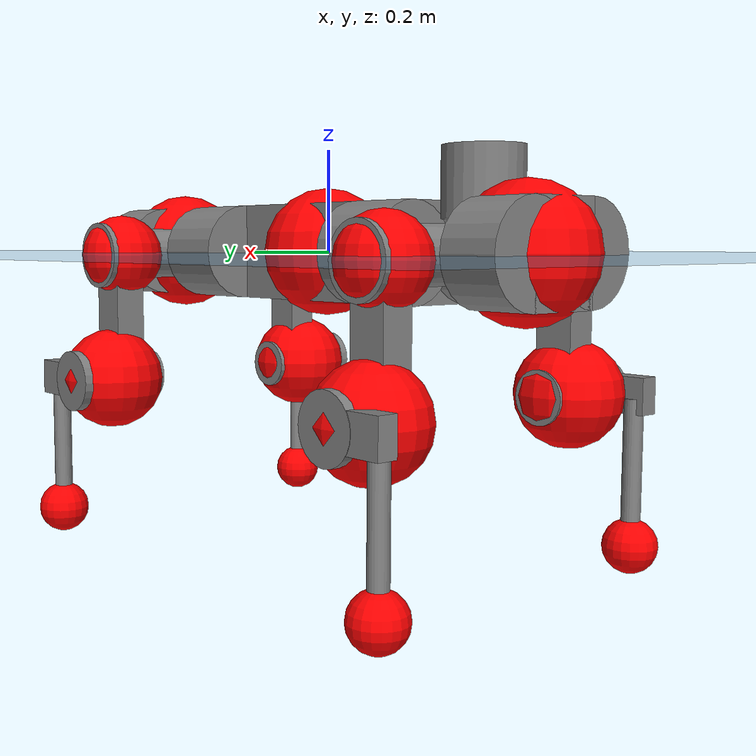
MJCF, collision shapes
<mujoco model="anymal_c">
  <compiler angle="radian" assetdir="assets" balanceinertia="true" inertiafromgeom="false"/>

  <option timestep="0.005" density="1.2" viscosity="2e-05"/>

  <size nkey="1"/>

  <visual>
    <quality shadowsize="8192"/>
    <map shadowclip="0.5"/>
  </visual>

  <default>
    <default class="/">
      <material specular="0" shininess="0.25"/>
      <geom contype="0" conaffinity="0" group="1" solref="-1000 -80"/>
      <site size="0.01 0.005 0.005" group="5"/>
      <general forcelimited="true" forcerange="-80 80" biastype="affine" gainprm="80" biasprm="0 -80 -2"/>
      <default class="anymal_c">
        <joint armature="0.01" damping="0.01" frictionloss="0.1"/>
        <default class="visual">
          <geom type="mesh" group="2"/>
          <default class="visual_zflip"/>
        </default>
        <default class="collision">
          <geom type="cylinder" group="3"/>
          <default class="foot">
            <geom size="0.03 0 0" type="sphere" condim="6" priority="1" friction="0.8 0.02 0.01" solimp="0.015 1 0.03"/>
          </default>
        </default>
      </default>
      <default class="reward_collision_sphere">
        <geom group="5" rgba="1 0 0 1"/>
      </default>
    </default>
  </default>

  <asset>
    <texture type="skybox" colorspace="auto" name="//unnamed_texture_0" builtin="gradient" rgb1="0.95 0.95 0.95" rgb2="0.95 0.95 0.95" width="100" height="600"/>
    <texture type="2d" colorspace="auto" name="texplane" builtin="checker" rgb1="0.345 0.575 0.748" rgb2="0.345 0.575 0.748" markrgb="1 1 1" width="512" height="512"/>
    <texture type="2d" colorspace="linear" name="base" file="base.png"/>
    <texture type="2d" colorspace="linear" name="top_shell" file="top_shell.png"/>
    <texture type="2d" colorspace="linear" name="bottom_shell" file="bottom_shell.png"/>
    <texture type="2d" colorspace="linear" name="remote" file="remote.png"/>
    <texture type="2d" colorspace="linear" name="hatch" file="hatch.png"/>
    <texture type="2d" colorspace="linear" name="handle" file="handle.png"/>
    <texture type="2d" colorspace="linear" name="face" file="face.png"/>
    <texture type="2d" colorspace="linear" name="battery" file="battery.png"/>
    <texture type="2d" colorspace="linear" name="lidar_cage" file="lidar_cage.png"/>
    <texture type="2d" colorspace="linear" name="depth_camera" file="depth_camera.png"/>
    <texture type="2d" colorspace="linear" name="wide_angle_camera" file="wide_angle_camera.png"/>
    <texture type="2d" colorspace="linear" name="lidar" file="lidar.png"/>
    <texture type="2d" colorspace="linear" name="drive" file="drive.png"/>
    <texture type="2d" colorspace="linear" name="hip_l" file="hip_l.png"/>
    <texture type="2d" colorspace="linear" name="shank_l" file="shank_l.png"/>
    <texture type="2d" colorspace="linear" name="foot" file="foot.png"/>
    <texture type="2d" colorspace="linear" name="thigh" file="thigh.png"/>
    <texture type="2d" colorspace="linear" name="shank_r" file="shank_r.png"/>
    <texture type="2d" colorspace="linear" name="hip_r" file="hip_r.png"/>
    <material name="MatPlane" class="/" texture="texplane" texuniform="true" texrepeat="2 2" specular="0.9" shininess="0.5"/>
    <material name="black_plastic" class="/" rgba="0.007 0.007 0.007 1"/>
    <material name="green" class="/" rgba="0.052 0.178 0.033 1"/>
    <material name="red" class="/" rgba="0.178 0.006 0.005 1"/>
    <material name="yellow" class="/" rgba="0.178 0.119 0.006 1"/>
    <material name="lwl" class="/" rgba="0.8 0.8 0.8 1"/>
    <material name="base" class="/" texture="base"/>
    <material name="top_shell" class="/" texture="top_shell"/>
    <material name="bottom_shell" class="/" texture="bottom_shell"/>
    <material name="hip_l" class="/" texture="hip_l"/>
    <material name="thigh" class="/" texture="thigh"/>
    <material name="shank_l" class="/" texture="shank_l"/>
    <material name="foot" class="/" texture="foot"/>
    <material name="hip_r" class="/" texture="hip_r"/>
    <material name="shank" class="/" texture="shank_r"/>
    <material name="hatch" class="/" texture="hatch"/>
    <material name="remote" class="/" texture="remote"/>
    <material name="handle" class="/" texture="handle"/>
    <material name="face" class="/" texture="face"/>
    <material name="depth_camera" class="/" texture="depth_camera"/>
    <material name="wide_angle_camera" class="/" texture="wide_angle_camera"/>
    <material name="battery" class="/" texture="battery"/>
    <material name="lidar_cage" class="/" texture="lidar_cage"/>
    <material name="lidar" class="/" texture="lidar"/>
    <material name="drive" class="/" texture="drive"/>
    <mesh name="base_0" class="/" file="base_0.obj"/>
    <mesh name="base_1" class="/" file="base_1.obj"/>
    <mesh name="base_2" class="/" file="base_2.obj"/>
    <mesh name="base_3" class="/" file="base_3.obj"/>
    <mesh name="base_4" class="/" file="base_4.obj"/>
    <mesh name="base_5" class="/" file="base_5.obj"/>
    <mesh name="top_shell" class="/" file="top_shell.obj"/>
    <mesh name="bottom_shell" class="/" file="bottom_shell.obj"/>
    <mesh name="remote" class="/" file="remote.obj"/>
    <mesh name="handle" class="/" file="handle.obj"/>
    <mesh name="face" class="/" file="face.obj"/>
    <mesh name="wide_angle_camera" class="/" file="wide_angle_camera.obj"/>
    <mesh name="depth_camera" class="/" file="depth_camera.obj"/>
    <mesh name="battery" class="/" file="battery.obj"/>
    <mesh name="lidar_cage" class="/" file="lidar_cage.obj"/>
    <mesh name="lidar" class="/" file="lidar.obj"/>
    <mesh name="drive" class="/" file="drive.obj"/>
    <mesh name="hip_l" class="/" file="hip_l.obj"/>
    <mesh name="thigh" class="/" file="thigh.obj"/>
    <mesh name="shank_l" class="/" file="shank_l.obj"/>
    <mesh name="foot" class="/" file="foot.obj"/>
    <mesh name="hip_r" class="/" file="hip_r.obj"/>
    <mesh name="hatch" class="/" file="hatch.obj"/>
    <mesh name="shank_r" class="/" file="shank_r.obj"/>
  </asset>

  <worldbody>
    <geom name="floor" class="/" size="100 100 0.125" type="plane" group="0" material="MatPlane"/>
    <light name="toplight_shadow" class="/" pos="0 0 5" dir="0.0990148 0.0990148 -0.990148" type="directional" ambient="0.04 0.04 0.04" diffuse="0.55 0.55 0.55" specular="0.12 0.12 0.12"/>
    <light name="toplight_fill" class="/" pos="0 0 5" dir="0.0990148 0.0990148 -0.990148" type="directional" castshadow="false" ambient="0.04 0.04 0.04" diffuse="0.3 0.3 0.3" specular="0.08 0.08 0.08"/>
    <body name="trunk" childclass="anymal_c" pos="0.00086236 0.00257062 0.000844723" quat="1 -5.72272e-05 0.000303937 -0.000655601">
      <inertial pos="0.00280485 -5.63484e-05 0.0445195" quat="0.504579 0.50552 0.488195 0.501514" mass="22.1327" diaginertia="1.21366 1.00121 0.131638"/>
      <joint name="//unnamed_joint_0" type="free" armature="0" damping="0" frictionloss="0"/>
      <geom name="//unnamed_geom_1" class="visual" material="green" mesh="base_0"/>
      <geom name="//unnamed_geom_2" class="visual" material="yellow" mesh="base_1"/>
      <geom name="//unnamed_geom_3" class="visual" material="red" mesh="base_2"/>
      <geom name="//unnamed_geom_4" class="visual" material="black_plastic" mesh="base_3"/>
      <geom name="//unnamed_geom_5" class="visual" material="lwl" mesh="base_4"/>
      <geom name="//unnamed_geom_6" class="visual" material="base" mesh="base_5"/>
      <geom name="trunk_1" class="collision" size="0.302087 0.0729176 0.0937512" type="box"/>
      <geom name="trunk_2" class="collision" size="0.0937512 0.0755218" pos="0.245805 0.0762392 0" quat="0.707107 0 0.707107 0"/>
      <geom name="trunk_3" class="collision" size="0.0937512 0.0755218" pos="-0.245805 0.0762392 0" quat="0.707107 0 0.707107 0"/>
      <geom name="trunk_4" class="collision" size="0.0937512 0.0755218" pos="0.245805 -0.0762392 0" quat="0.707107 0 0.707107 0"/>
      <geom name="trunk_5" class="collision" size="0.0937512 0.0755218" pos="-0.245805 -0.0762392 0" quat="0.707107 0 0.707107 0"/>
      <geom name="//unnamed_geom_12" class="visual" material="top_shell" mesh="top_shell"/>
      <geom name="//unnamed_geom_13" class="visual" material="bottom_shell" mesh="bottom_shell"/>
      <geom name="//unnamed_geom_14" class="visual" material="remote" mesh="remote"/>
      <geom name="//unnamed_geom_15" class="visual" material="handle" mesh="handle"/>
      <geom name="//unnamed_geom_16" class="visual" pos="0.468441 0 0" quat="1 0 0 0" material="face" mesh="face"/>
      <geom name="trunk_6" class="collision" size="0.0572924 0.0729176 0.0937512" pos="0.530599 0 0" type="box"/>
      <geom name="//unnamed_geom_18" class="collision" size="0.0937512 0.0572924" pos="0.530599 0.0762392 0" quat="0.707107 0 0.707107 0"/>
      <geom name="//unnamed_geom_19" class="collision" size="0.0937512 0.0572924" pos="0.530599 -0.0762392 0" quat="0.707107 0 0.707107 0"/>
      <geom name="//unnamed_geom_20" class="visual" pos="0.521718 0 -0.0247434" quat="0.965926 0 0.258819 0" material="depth_camera" mesh="depth_camera"/>
      <geom name="//unnamed_geom_21" class="visual" pos="0.57976 0 0.0135594" material="wide_angle_camera" mesh="wide_angle_camera"/>
      <geom name="//unnamed_geom_22" class="visual_zflip" pos="-0.468441 0 0" quat="0 0 0 1" material="face" mesh="face"/>
      <geom name="trunk_7" class="collision" size="0.0572924 0.0729176 0.0937512" pos="-0.530599 0 0" quat="0 0 0 1" type="box"/>
      <geom name="//unnamed_geom_24" class="collision" size="0.0937512 0.0572924" pos="-0.530599 -0.0762392 0" quat="0 -0.707107 0 0.707107"/>
      <geom name="//unnamed_geom_25" class="collision" size="0.0937512 0.0572924" pos="-0.530599 0.0762392 0" quat="0 -0.707107 0 0.707107"/>
      <geom name="//unnamed_geom_26" class="visual" pos="-0.521718 0 -0.0247434" quat="0 -0.258819 0 0.965926" material="depth_camera" mesh="depth_camera"/>
      <geom name="//unnamed_geom_27" class="visual_zflip" pos="-0.57976 0 0.0135594" quat="0 0 0 1" material="wide_angle_camera" mesh="wide_angle_camera"/>
      <geom name="//unnamed_geom_28" class="visual" material="battery" mesh="battery"/>
      <geom name="//unnamed_geom_29" class="visual" pos="0 0.0827276 0.0280179" quat="0.683013 -0.183013 0.183013 0.683013" material="depth_camera" mesh="depth_camera"/>
      <geom name="//unnamed_geom_30" class="visual" pos="0 -0.0827276 0.0280179" quat="0.683013 0.183013 0.183013 -0.683013" material="depth_camera" mesh="depth_camera"/>
      <geom name="//unnamed_geom_31" class="visual" pos="-0.41137 0 0.0665743" quat="1 0 0 0" material="lidar_cage" mesh="lidar_cage"/>
      <geom name="trunk_8" class="collision" size="0.0729176 0.0625008" pos="-0.41137 0 0.120921"/>
      <geom name="//unnamed_geom_33" class="visual" pos="-0.41137 -1.61099e-05 0.128801" quat="0.707107 0 0 -0.707107" material="lidar" mesh="lidar"/>
      <geom name="//unnamed_geom_34" class="visual" pos="0.338928 0.113204 3.16295e-09" quat="0.258819 0.965926 0 0" material="drive" mesh="drive"/>
      <geom name="//unnamed_geom_35" class="visual" pos="0.338928 -0.113204 -3.16295e-09" quat="0.258819 -0.965926 0 0" material="drive" mesh="drive"/>
      <geom name="//unnamed_geom_36" class="visual" pos="-0.338928 0.113204 -3.16295e-09" quat="0 0 0.965926 -0.258819" material="drive" mesh="drive"/>
      <geom name="//unnamed_geom_37" class="visual" pos="-0.338928 -0.113204 3.16295e-09" quat="0 0 -0.965926 -0.258819" material="drive" mesh="drive"/>
      <geom name="//unnamed_geom_38" class="visual" pos="0.131096 0 0.0661214" quat="1 0 0 0" material="hatch" mesh="hatch"/>
      <geom name="//unnamed_geom_39" class="reward_collision_sphere" size="0.125002"/>
      <geom name="//unnamed_geom_40" class="reward_collision_sphere" size="0.125002" pos="0.508561 0 0"/>
      <geom name="//unnamed_geom_41" class="reward_collision_sphere" size="0.125002" pos="-0.508561 0 0"/>
      <site name="imu" pos="0.290093 0.00892253 0.0426825" size="0.0104168"/>
      <camera name="track" pos="0 -2.17826 0" quat="0.707107 0.707107 0 0" mode="trackcom"/>
      <camera name="ego_camera" pos="0.508561 0 -0.0362309" quat="-0.5 -0.5 0.5 0.5"/>
      <body name="LF_HIP" pos="0.339295 0.1122 -0.00341261" quat="0.258388 0.966041 0.00041085 9.40389e-06">
        <inertial pos="0.0637991 -0.0189584 -0.00728993" quat="-0.127558 0.708965 -0.135249 0.680298" mass="3.1352" diaginertia="0.0107878 0.00741808 0.00203568"/>
        <joint name="LF_HAA" pos="0 0 0" axis="0.999985 0.0041483 -0.0036889" range="-0.704203 0.490331" armature="0.0105399" damping="0.0156272" frictionloss="0.118672"/>
        <geom name="//unnamed_geom_42" class="visual" pos="0 0.000186062 -3.05605e-05" quat="0.258819 -0.965926 0 0" material="hip_l" mesh="hip_l"/>
        <geom name="//unnamed_geom_43" class="visual" pos="0.0676952 -0.0814221 -0.0456528" quat="0.183013 -0.683013 0.683013 0.183013" material="drive" mesh="drive"/>
        <geom name="//unnamed_geom_44" class="collision" size="0.052084 0.0729176" pos="0.0676952 -0.0130258 -0.00625436" quat="-0.353553 -0.612372 0.612372 -0.353553"/>
        <body name="LF_THIGH" pos="0.065268 -0.0791179 -0.0399535" quat="0.181991 -0.682827 0.683295 0.183668">
          <inertial pos="0.0358679 7.95475e-05 -0.22196" quat="0.994486 -0.0107692 -0.0740519 0.0734648" mass="3.32745" diaginertia="0.0535409 0.0443664 0.00250333"/>
          <joint name="LF_HFE" pos="0 0 0" axis="0.999867 -0.00883821 -0.0137352" range="-3.09324 3.13442" armature="0.0112724" damping="0" frictionloss="0.0899803"/>
          <geom name="//unnamed_geom_45" class="visual" pos="0.000815845 1.28558e-06 0" quat="0.707107 0 0 -0.707107" material="thigh" mesh="thigh"/>
          <geom name="//unnamed_geom_46" class="collision" size="0.0677092 0.0416672" pos="0.0452054 0 0" quat="0.5 0.5 -0.5 -0.5"/>
          <geom name="//unnamed_geom_47" class="collision" size="0.039063 0.0312504 0.147204" pos="0.0339041 0 -0.127998" quat="0.707107 0 0 -0.707107" type="box"/>
          <geom name="//unnamed_geom_48" class="visual" pos="0.113353 0 -0.258145" quat="1 0 0 0" material="drive" mesh="drive"/>
          <geom name="//unnamed_geom_49" class="collision" size="0.052084 0.0729176" pos="0.0342431 0 -0.258145" quat="0.707107 0 0.707107 0"/>
          <geom name="//unnamed_geom_50" class="reward_collision_sphere" size="0.0833344" pos="0.0282534 0 0"/>
          <body name="LF_SHANK" pos="0.112415 0.000587644 -0.259942" quat="0.999999 -0.000812749 -0.000685712 2.2338e-05">
            <inertial pos="0.00898138 -0.0679337 -0.0735386" quat="0.992807 -0.117045 -0.00184363 -0.0251423" mass="0.710191" diaginertia="0.0188792 0.0146862 0.000693003"/>
            <joint name="LF_KFE" pos="0 0 0" axis="0.99992 -0.000498264 -0.012639" range="-3.14208 3.13101" armature="0.0104873" damping="0" frictionloss="0.101174"/>
            <geom name="//unnamed_geom_51" class="visual" pos="0.000266029 0.00141848 0" quat="0.707107 0 0 -0.707107" material="shank_l" mesh="shank_l"/>
            <geom name="LF_kfe_act" class="collision" size="0.0625008 0.0208336" pos="0.0226027 0 0" quat="0.5 0.5 -0.5 -0.5"/>
            <geom name="//unnamed_geom_53" class="collision" size="0.0598955 0.0351567 0.0197919" pos="0.0226027 -0.0626239 0" quat="0.5 0.5 -0.5 -0.5" type="box"/>
            <geom name="//unnamed_geom_54" class="visual" pos="0.0147482 -0.0953319 -0.306124" quat="0.382683 0 0 -0.92388" material="foot" mesh="foot"/>
            <geom name="LF_calf" class="collision" size="0.0182294 0.147139" pos="0.0147483 -0.0957891 -0.153062" quat="0.707107 0 0 -0.707107"/>
            <geom name="LF_foot" class="foot" size="0.0341414" pos="0.0147483 -0.0957891 -0.285744" quat="0.707107 0 0 -0.707107"/>
            <geom name="//unnamed_geom_57" class="reward_collision_sphere" size="0.104168" pos="-0.0565068 0 0"/>
            <geom name="//unnamed_geom_58" class="reward_collision_sphere" size="0.052084" pos="0.0147483 -0.0957891 -0.285744"/>
            <site name="LF_foot" class="foot" pos="0.0147483 -0.0957891 -0.285744" quat="0.707107 0 0 -0.707107" size="0.0104168"/>
          </body>
        </body>
      </body>
      <body name="RF_HIP" pos="0.339578 -0.114271 -0.001117" quat="0.258828 -0.965923 -3.5545e-05 -6.69827e-06">
        <inertial pos="0.0637998 0.0192191 -0.00801843" quat="0.126186 0.680962 0.118646 0.711541" mass="3.14949" diaginertia="0.010935 0.00730857 0.00201354"/>
        <joint name="RF_HAA" pos="0 0 0" axis="0.999983 0.00167001 0.00562986" range="-0.498887 0.719956" armature="0.0105224" damping="0.00829329" frictionloss="0.0967364"/>
        <geom name="//unnamed_geom_59" class="visual" pos="0 -0.000186061 -3.05605e-05" quat="0.258819 0.965926 0 0" material="hip_r" mesh="hip_r"/>
        <geom name="//unnamed_geom_60" class="visual" pos="0.0676952 0.0814221 -0.0456528" quat="0.183013 0.683013 0.683013 -0.183013" material="drive" mesh="drive"/>
        <geom name="//unnamed_geom_61" class="collision" size="0.052084 0.0729176" pos="0.0676952 0.0130258 -0.00625436" quat="-0.353553 0.612372 0.612372 0.353553"/>
        <body name="RF_THIGH" pos="0.0677824 0.0770724 -0.0360644" quat="0.182919 0.68296 0.683098 -0.182984">
          <inertial pos="0.0321067 -0.00123551 -0.220579" quat="0.992798 -0.00542324 -0.0815852 0.087557" mass="3.57103" diaginertia="0.0562981 0.0473187 0.00262456"/>
          <joint name="RF_HFE" pos="0 0 0" axis="0.999898 0.00528236 0.0132585" stiffness="0.0154927" range="-3.13988 3.19568" armature="0.00936218" damping="0.00219155" frictionloss="0.108397"/>
          <geom name="//unnamed_geom_62" class="visual" pos="0.000815845 1.28558e-06 0" quat="0.707107 0 0 -0.707107" material="thigh" mesh="thigh"/>
          <geom name="//unnamed_geom_63" class="collision" size="0.0677092 0.0416672" pos="0.0452054 0 0" quat="0.5 0.5 0.5 0.5"/>
          <geom name="//unnamed_geom_64" class="collision" size="0.039063 0.0312504 0.147204" pos="0.0339041 0 -0.127998" quat="0.707107 0 0 0.707107" type="box"/>
          <geom name="//unnamed_geom_65" class="visual" pos="0.113353 0 -0.258145" quat="1 0 0 0" material="drive" mesh="drive"/>
          <geom name="//unnamed_geom_66" class="collision" size="0.052084 0.0729176" pos="0.0342431 0 -0.258145" quat="0.707107 0 0.707107 0"/>
          <geom name="//unnamed_geom_67" class="reward_collision_sphere" size="0.0833344" pos="0.0282534 0 0"/>
          <body name="RF_SHANK" pos="0.114426 0.00226849 -0.256441" quat="1 4.18087e-05 3.36652e-05 0.000223186">
            <inertial pos="0.00488369 0.0642071 -0.0715435" quat="0.992757 0.116816 -0.00299913 0.0279188" mass="0.65134" diaginertia="0.0193294 0.0143267 0.000676519"/>
            <joint name="RF_KFE" pos="0 0 0" axis="0.999903 -0.00811061 0.0113604" stiffness="0.000280257" range="-3.14377 3.15401" armature="0.0104898" damping="0.0107622" frictionloss="0.109408"/>
            <geom name="//unnamed_geom_68" class="visual" pos="0.000266028 -0.00141848 0" quat="0.707107 0 0 0.707107" material="shank" mesh="shank_r"/>
            <geom name="RF_kfe_act" class="collision" size="0.0625008 0.0208336" pos="0.0226027 0 0" quat="0.5 0.5 0.5 0.5"/>
            <geom name="//unnamed_geom_70" class="collision" size="0.0598955 0.0351567 0.0197919" pos="0.0226027 0.0626239 0" quat="0.5 0.5 0.5 0.5" type="box"/>
            <geom name="//unnamed_geom_71" class="visual" pos="0.0147483 0.0953319 -0.306124" quat="0.382683 0 0 0.92388" material="foot" mesh="foot"/>
            <geom name="RF_calf" class="collision" size="0.0182294 0.147139" pos="0.0147483 0.0957891 -0.153062" quat="0.707107 0 0 0.707107"/>
            <geom name="RF_foot" class="foot" size="0.0292956" pos="0.0147483 0.0957891 -0.285744" quat="0.707107 0 0 0.707107"/>
            <geom name="//unnamed_geom_74" class="reward_collision_sphere" size="0.104168" pos="-0.0565068 0 0"/>
            <geom name="//unnamed_geom_75" class="reward_collision_sphere" size="0.052084" pos="0.0147483 0.0957891 -0.285744"/>
            <site name="RF_foot" class="foot" pos="0.0147483 0.0957891 -0.285744" quat="0.707107 0 0 0.707107" size="0.0104168"/>
          </body>
        </body>
      </body>
      <body name="LH_HIP" pos="-0.340194 0.112337 -0.00147372" quat="-0.000490826 0.00014946 0.965804 -0.259272">
        <inertial pos="0.0642576 0.01767 -0.00714127" quat="0.140681 0.679359 0.127755 0.708773" mass="3.02256" diaginertia="0.0105328 0.0075429 0.00196774"/>
        <joint name="LH_HAA" pos="0 0 0" axis="0.999882 0.00673245 -0.0138241" range="-0.445717 0.775277" armature="0.0103747" damping="0.00928567" frictionloss="0.0920498"/>
        <geom name="//unnamed_geom_76" class="visual" pos="0 -0.000186061 -3.05605e-05" quat="-0.258819 -0.965926 0 0" material="hip_r" mesh="hip_r"/>
        <geom name="//unnamed_geom_77" class="visual" pos="0.0676952 0.0814221 -0.0456528" quat="0.183013 0.683013 0.683013 -0.183013" material="drive" mesh="drive"/>
        <geom name="//unnamed_geom_78" class="collision" size="0.052084 0.0729176" pos="0.0676952 0.0130258 -0.00625436" quat="-0.353553 0.612372 0.612372 0.353553"/>
        <body name="LH_THIGH" pos="0.0696994 0.0820815 -0.0373245" quat="0.184453 0.682703 0.682835 -0.183385">
          <inertial pos="0.0359808 -0.000154082 -0.223336" quat="0.992716 -0.0108466 -0.0862106 0.0834536" mass="3.61402" diaginertia="0.0555614 0.0465172 0.00264711"/>
          <joint name="LH_HFE" pos="0 0 0" axis="0.999992 -0.00359248 -0.00146177" range="-3.09441 3.19096" armature="0.0105355" damping="0.0201826" frictionloss="0.111351"/>
          <geom name="//unnamed_geom_79" class="visual" pos="0.000815845 1.28558e-06 0" quat="0.707107 0 0 -0.707107" material="thigh" mesh="thigh"/>
          <geom name="//unnamed_geom_80" class="collision" size="0.0677092 0.0416672" pos="0.0452054 0 0" quat="0.5 0.5 -0.5 -0.5"/>
          <geom name="//unnamed_geom_81" class="collision" size="0.039063 0.0312504 0.147204" pos="0.0339041 0 -0.127998" quat="0.707107 0 0 -0.707107" type="box"/>
          <geom name="//unnamed_geom_82" class="visual" pos="0.113353 0 -0.258145" quat="1 0 0 0" material="drive" mesh="drive"/>
          <geom name="//unnamed_geom_83" class="collision" size="0.052084 0.0729176" pos="0.0342431 0 -0.258145" quat="0.707107 0 0.707107 0"/>
          <geom name="//unnamed_geom_84" class="reward_collision_sphere" size="0.0833344" pos="0.0282534 0 0"/>
          <body name="LH_SHANK" pos="0.110911 0.00120837 -0.25767" quat="1 -0.000235712 -4.74483e-05 -0.00023425">
            <inertial pos="0.00570047 0.0664694 -0.0744151" quat="0.992682 0.118612 -0.0128622 0.018665" mass="0.660838" diaginertia="0.018955 0.0136854 0.000675783"/>
            <joint name="LH_KFE" pos="0 0 0" axis="0.999943 -0.000441642 -0.0106689" range="-3.12208 3.08856" armature="0.0111785" damping="0.00731829" frictionloss="0.0945784"/>
            <geom name="//unnamed_geom_85" class="visual" pos="0.000266028 -0.00141848 0" quat="-0.707107 0 0 -0.707107" material="shank" mesh="shank_r"/>
            <geom name="LH_kfe_act" class="collision" size="0.0625008 0.0208336" pos="0.0226027 0 0" quat="0.5 0.5 -0.5 -0.5"/>
            <geom name="//unnamed_geom_87" class="collision" size="0.0598955 0.0351567 0.0197919" pos="0.0226027 0.0626239 0" quat="0.5 0.5 -0.5 -0.5" type="box"/>
            <geom name="//unnamed_geom_88" class="visual" pos="0.0147483 0.0953319 -0.306124" quat="-0.382683 0 0 -0.92388" material="foot" mesh="foot"/>
            <geom name="LH_calf" class="collision" size="0.0182294 0.147139" pos="0.0147483 0.0957891 -0.153062" quat="0.707107 0 0 -0.707107"/>
            <geom name="LH_foot" class="foot" size="0.029689" pos="0.0147483 0.0957891 -0.285744" quat="0.707107 0 0 -0.707107"/>
            <geom name="//unnamed_geom_91" class="reward_collision_sphere" size="0.104168" pos="-0.0565068 0 0"/>
            <geom name="//unnamed_geom_92" class="reward_collision_sphere" size="0.052084" pos="0.0147483 0.0957891 -0.285744"/>
            <site name="LH_foot" class="foot" pos="0.0147483 0.0957891 -0.285744" quat="0.707107 0 0 -0.707107" size="0.0104168"/>
          </body>
        </body>
      </body>
      <body name="RH_HIP" pos="-0.338821 -0.110423 0.000824516" quat="-0.000585013 0.000778515 -0.965826 -0.259189">
        <inertial pos="0.0661972 -0.0139632 -0.00714914" quat="-0.128052 0.709722 -0.135368 0.679391" mass="3.10434" diaginertia="0.0110697 0.00770698 0.00205384"/>
        <joint name="RH_HAA" pos="0 0 0" axis="0.999999 -0.00126879 0.00085404" range="-0.718327 0.539569" armature="0.00918408" damping="0.0248547" frictionloss="0.10037"/>
        <geom name="//unnamed_geom_93" class="visual" pos="0 0.000186062 -3.05605e-05" quat="-0.258819 0.965926 0 0" material="hip_l" mesh="hip_l"/>
        <geom name="//unnamed_geom_94" class="visual" pos="0.0676952 -0.0814221 -0.0456528" quat="-0.183013 0.683013 -0.683013 -0.183013" material="drive" mesh="drive"/>
        <geom name="//unnamed_geom_95" class="collision" size="0.052084 0.0729176" pos="0.0676952 -0.0130258 -0.00625436" quat="0.353553 0.612372 -0.612372 0.353553"/>
        <body name="RH_THIGH" pos="0.0677049 -0.0802204 -0.0374423" quat="-0.182069 0.682566 -0.683836 -0.182546">
          <inertial pos="0.0368763 0.000811661 -0.220191" quat="0.993204 -0.00142221 -0.0787953 0.0856495" mass="3.39241" diaginertia="0.0562379 0.0464826 0.00250992"/>
          <joint name="RH_HFE" pos="0 0 0" axis="0.999981 0.00552306 -0.00282323" range="-3.14999 3.19518" armature="0.0110731" damping="0.00602096" frictionloss="0.0896521"/>
          <geom name="//unnamed_geom_96" class="visual" pos="0.000815845 1.28558e-06 0" quat="0.707107 0 0 -0.707107" material="thigh" mesh="thigh"/>
          <geom name="//unnamed_geom_97" class="collision" size="0.0677092 0.0416672" pos="0.0452054 0 0" quat="0.5 0.5 0.5 0.5"/>
          <geom name="//unnamed_geom_98" class="collision" size="0.039063 0.0312504 0.147204" pos="0.0339041 0 -0.127998" quat="0.707107 0 0 0.707107" type="box"/>
          <geom name="//unnamed_geom_99" class="visual" pos="0.113353 0 -0.258145" quat="1 0 0 0" material="drive" mesh="drive"/>
          <geom name="//unnamed_geom_100" class="collision" size="0.052084 0.0729176" pos="0.0342431 0 -0.258145" quat="0.707107 0 0.707107 0"/>
          <geom name="//unnamed_geom_101" class="reward_collision_sphere" size="0.0833344" pos="0.0282534 0 0"/>
          <body name="RH_SHANK" pos="0.111076 0.00171323 -0.257141" quat="1 -0.000150814 0.00013172 -0.000242225">
            <inertial pos="0.00525073 -0.0662358 -0.0729155" quat="0.992946 -0.116545 -0.0035502 -0.0215168" mass="0.681037" diaginertia="0.018286 0.014465 0.000691105"/>
            <joint name="RH_KFE" pos="0 0 0" axis="1 0.000400386 -0.000538695" range="-3.16591 3.14098" armature="0.01043" damping="0.0149733" frictionloss="0.10401"/>
            <geom name="//unnamed_geom_102" class="visual" pos="0.000266029 0.00141848 0" quat="0.707107 0 0 -0.707107" material="shank_l" mesh="shank_l"/>
            <geom name="RH_kfe_act" class="collision" size="0.0625008 0.0208336" pos="0.0226027 0 0" quat="0.5 0.5 0.5 0.5"/>
            <geom name="//unnamed_geom_104" class="collision" size="0.0598955 0.0351567 0.0197919" pos="0.0226027 -0.0626239 0" quat="0.5 0.5 0.5 0.5" type="box"/>
            <geom name="//unnamed_geom_105" class="visual" pos="0.0147482 -0.0953319 -0.306124" quat="0.382683 0 0 -0.92388" material="foot" mesh="foot"/>
            <geom name="RH_calf" class="collision" size="0.0182294 0.147139" pos="0.0147483 -0.0957891 -0.153062" quat="0.707107 0 0 0.707107"/>
            <geom name="RH_foot" class="foot" size="0.0309472" pos="0.0147483 -0.0957891 -0.285744" quat="0.707107 0 0 0.707107"/>
            <geom name="//unnamed_geom_108" class="reward_collision_sphere" size="0.104168" pos="-0.0565068 0 0"/>
            <geom name="//unnamed_geom_109" class="reward_collision_sphere" size="0.052084" pos="0.0147483 -0.0957891 -0.285744"/>
            <site name="RH_foot" class="foot" pos="0.0147483 -0.0957891 -0.285744" quat="0.707107 0 0 0.707107" size="0.0104168"/>
          </body>
        </body>
      </body>
    </body>
  </worldbody>

  <contact>
    <pair class="/" geom1="floor" geom2="LF_foot" name="//unnamed_contact_0"/>
    <pair class="/" geom1="floor" geom2="RF_foot" name="//unnamed_contact_1"/>
    <pair class="/" geom1="floor" geom2="LH_foot" name="//unnamed_contact_2"/>
    <pair class="/" geom1="floor" geom2="RH_foot" name="//unnamed_contact_3"/>
  </contact>

  <actuator>
    <general name="LF_HAA" class="/" joint="LF_HAA" forcerange="-84.3071 84.3071" gainprm="83.9276" biasprm="0 -83.9276 -2.25415"/>
    <general name="LF_HFE" class="/" joint="LF_HFE" forcerange="-78.94 78.94" gainprm="83.9276" biasprm="0 -83.9276 -2.25415"/>
    <general name="LF_KFE" class="/" joint="LF_KFE" forcerange="-92.2861 92.2861" gainprm="83.9276" biasprm="0 -83.9276 -2.25415"/>
    <general name="RF_HAA" class="/" joint="RF_HAA" forcerange="-85.004 85.004" gainprm="83.9276" biasprm="0 -83.9276 -2.25415"/>
    <general name="RF_HFE" class="/" joint="RF_HFE" forcerange="-86.784 86.784" gainprm="83.9276" biasprm="0 -83.9276 -2.25415"/>
    <general name="RF_KFE" class="/" joint="RF_KFE" forcerange="-91.9857 91.9857" gainprm="83.9276" biasprm="0 -83.9276 -2.25415"/>
    <general name="LH_HAA" class="/" joint="LH_HAA" forcerange="-84.927 84.927" gainprm="83.9276" biasprm="0 -83.9276 -2.25415"/>
    <general name="LH_HFE" class="/" joint="LH_HFE" forcerange="-91.9514 91.9514" gainprm="83.9276" biasprm="0 -83.9276 -2.25415"/>
    <general name="LH_KFE" class="/" joint="LH_KFE" forcerange="-75.6966 75.6966" gainprm="83.9276" biasprm="0 -83.9276 -2.25415"/>
    <general name="RH_HAA" class="/" joint="RH_HAA" forcerange="-86.4685 86.4685" gainprm="83.9276" biasprm="0 -83.9276 -2.25415"/>
    <general name="RH_HFE" class="/" joint="RH_HFE" forcerange="-91.4068 91.4068" gainprm="83.9276" biasprm="0 -83.9276 -2.25415"/>
    <general name="RH_KFE" class="/" joint="RH_KFE" forcerange="-85.8016 85.8016" gainprm="83.9276" biasprm="0 -83.9276 -2.25415"/>
  </actuator>

  <sensor>
    <gyro site="imu" name="imu_angular_velocity"/>
    <velocimeter site="imu" name="imu_linear_velocity"/>
    <framelinvel objtype="site" objname="LF_foot" name="LF_foot_global_linear_velocity"/>
    <framelinvel objtype="site" objname="RF_foot" name="RF_foot_global_linear_velocity"/>
    <framelinvel objtype="site" objname="LH_foot" name="LH_foot_global_linear_velocity"/>
    <framelinvel objtype="site" objname="RH_foot" name="RH_foot_global_linear_velocity"/>
  </sensor>

  <keyframe>
    <key name="home" qpos="0 0 0.55 1 0 0 0 0 0.4 -0.8 0 -0.4 0.8 0 -0.4 0.8 0 0.4 -0.8"/>
  </keyframe>
</mujoco>
